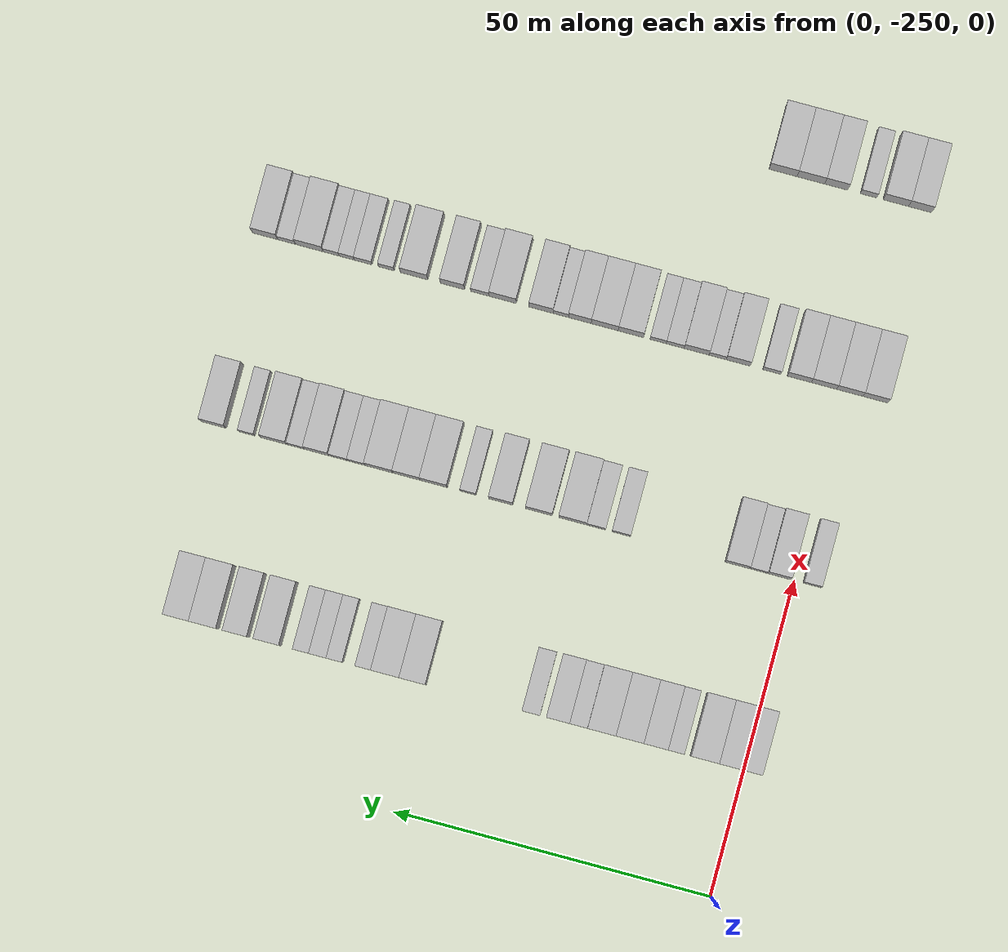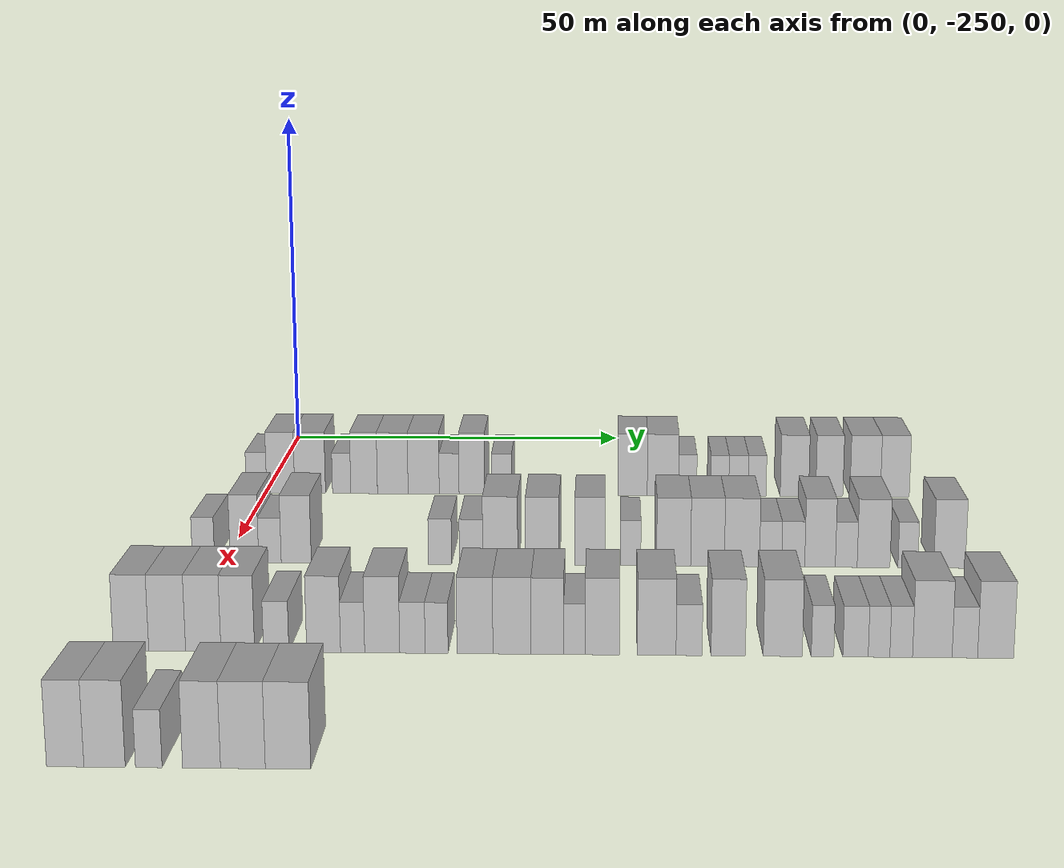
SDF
<sdf version="1.6">
 <world name="default">
  <model name="building_41">
   <static>1</static>
   <pose>25.0000 -251.3099 0 0.000000 0.000000 0.000000</pose>
   <link name="link">
    <pose>0 0 3.00 0 0 0</pose>
    <collision name="collision"><geometry><box><size>10.0000 2.9061 6.0000</size></box></geometry></collision>
    <visual name="visual">
     <cast_shadows>0</cast_shadows>
     <geometry><box><size>10.0000 2.9061 6.0000</size></box></geometry>
     <material>
      <script>
       <uri>model://HANNAS_wall/materials/scripts</uri>
       <uri>model://HANNAS_wall/materials/textures</uri>
       <name>vrc/HANNAS_wall</name>
      </script>
     </material>
    </visual>
   </link>
  </model>
  <model name="building_42">
   <static>1</static>
   <pose>25.0000 -247.8543 0 0.000000 0.000000 0.000000</pose>
   <link name="link">
    <pose>0 0 4.50 0 0 0</pose>
    <collision name="collision"><geometry><box><size>10.0000 4.0052 9.0000</size></box></geometry></collision>
    <visual name="visual">
     <cast_shadows>0</cast_shadows>
     <geometry><box><size>10.0000 4.0052 9.0000</size></box></geometry>
     <material>
      <script>
       <uri>model://HANNAS_wall/materials/scripts</uri>
       <uri>model://HANNAS_wall/materials/textures</uri>
       <name>vrc/HANNAS_wall</name>
      </script>
     </material>
    </visual>
   </link>
  </model>
  <model name="building_43">
   <static>1</static>
   <pose>25.0000 -243.6501 0 0.000000 0.000000 0.000000</pose>
   <link name="link">
    <pose>0 0 4.50 0 0 0</pose>
    <collision name="collision"><geometry><box><size>10.0000 4.4032 9.0000</size></box></geometry></collision>
    <visual name="visual">
     <cast_shadows>0</cast_shadows>
     <geometry><box><size>10.0000 4.4032 9.0000</size></box></geometry>
     <material>
      <script>
       <uri>model://HANNAS_wall/materials/scripts</uri>
       <uri>model://HANNAS_wall/materials/textures</uri>
       <name>vrc/HANNAS_wall</name>
      </script>
     </material>
    </visual>
   </link>
  </model>
  <model name="building_44">
   <static>1</static>
   <pose>25.0000 -239.1411 0 0.000000 0.000000 0.000000</pose>
   <link name="link">
    <pose>0 0 3.00 0 0 0</pose>
    <collision name="collision"><geometry><box><size>10.0000 2.6146 6.0000</size></box></geometry></collision>
    <visual name="visual">
     <cast_shadows>0</cast_shadows>
     <geometry><box><size>10.0000 2.6146 6.0000</size></box></geometry>
     <material>
      <script>
       <uri>model://HANNAS_wall/materials/scripts</uri>
       <uri>model://HANNAS_wall/materials/textures</uri>
       <name>vrc/HANNAS_wall</name>
      </script>
     </material>
    </visual>
   </link>
  </model>
  <model name="building_45">
   <static>1</static>
   <pose>25.0000 -235.9345 0 0.000000 0.000000 0.000000</pose>
   <link name="link">
    <pose>0 0 4.50 0 0 0</pose>
    <collision name="collision"><geometry><box><size>10.0000 3.7987 9.0000</size></box></geometry></collision>
    <visual name="visual">
     <cast_shadows>0</cast_shadows>
     <geometry><box><size>10.0000 3.7987 9.0000</size></box></geometry>
     <material>
      <script>
       <uri>model://HANNAS_wall/materials/scripts</uri>
       <uri>model://HANNAS_wall/materials/textures</uri>
       <name>vrc/HANNAS_wall</name>
      </script>
     </material>
    </visual>
   </link>
  </model>
  <model name="building_46">
   <static>1</static>
   <pose>25.0000 -231.8485 0 0.000000 0.000000 0.000000</pose>
   <link name="link">
    <pose>0 0 4.50 0 0 0</pose>
    <collision name="collision"><geometry><box><size>10.0000 4.3732 9.0000</size></box></geometry></collision>
    <visual name="visual">
     <cast_shadows>0</cast_shadows>
     <geometry><box><size>10.0000 4.3732 9.0000</size></box></geometry>
     <material>
      <script>
       <uri>model://HANNAS_wall/materials/scripts</uri>
       <uri>model://HANNAS_wall/materials/textures</uri>
       <name>vrc/HANNAS_wall</name>
      </script>
     </material>
    </visual>
   </link>
  </model>
  <model name="building_47">
   <static>1</static>
   <pose>25.0000 -227.4448 0 0.000000 0.000000 0.000000</pose>
   <link name="link">
    <pose>0 0 4.50 0 0 0</pose>
    <collision name="collision"><geometry><box><size>10.0000 4.4342 9.0000</size></box></geometry></collision>
    <visual name="visual">
     <cast_shadows>0</cast_shadows>
     <geometry><box><size>10.0000 4.4342 9.0000</size></box></geometry>
     <material>
      <script>
       <uri>model://HANNAS_wall/materials/scripts</uri>
       <uri>model://HANNAS_wall/materials/textures</uri>
       <name>vrc/HANNAS_wall</name>
      </script>
     </material>
    </visual>
   </link>
  </model>
  <model name="building_48">
   <static>1</static>
   <pose>25.0000 -223.8152 0 0.000000 0.000000 0.000000</pose>
   <link name="link">
    <pose>0 0 3.00 0 0 0</pose>
    <collision name="collision"><geometry><box><size>10.0000 2.8250 6.0000</size></box></geometry></collision>
    <visual name="visual">
     <cast_shadows>0</cast_shadows>
     <geometry><box><size>10.0000 2.8250 6.0000</size></box></geometry>
     <material>
      <script>
       <uri>model://HANNAS_wall/materials/scripts</uri>
       <uri>model://HANNAS_wall/materials/textures</uri>
       <name>vrc/HANNAS_wall</name>
      </script>
     </material>
    </visual>
   </link>
  </model>
  <model name="building_49">
   <static>1</static>
   <pose>25.0000 -220.5800 0 0.000000 0.000000 0.000000</pose>
   <link name="link">
    <pose>0 0 4.50 0 0 0</pose>
    <collision name="collision"><geometry><box><size>10.0000 3.6453 9.0000</size></box></geometry></collision>
    <visual name="visual">
     <cast_shadows>0</cast_shadows>
     <geometry><box><size>10.0000 3.6453 9.0000</size></box></geometry>
     <material>
      <script>
       <uri>model://HANNAS_wall/materials/scripts</uri>
       <uri>model://HANNAS_wall/materials/textures</uri>
       <name>vrc/HANNAS_wall</name>
      </script>
     </material>
    </visual>
   </link>
  </model>
  <model name="building_50">
   <static>1</static>
   <pose>25.0000 -216.3403 0 0.000000 0.000000 0.000000</pose>
   <link name="link">
    <pose>0 0 3.00 0 0 0</pose>
    <collision name="collision"><geometry><box><size>10.0000 2.8340 6.0000</size></box></geometry></collision>
    <visual name="visual">
     <cast_shadows>0</cast_shadows>
     <geometry><box><size>10.0000 2.8340 6.0000</size></box></geometry>
     <material>
      <script>
       <uri>model://HANNAS_wall/materials/scripts</uri>
       <uri>model://HANNAS_wall/materials/textures</uri>
       <name>vrc/HANNAS_wall</name>
      </script>
     </material>
    </visual>
   </link>
  </model>
  <model name="building_51">
   <static>1</static>
   <pose>25.0000 -197.7260 0 0.000000 0.000000 0.000000</pose>
   <link name="link">
    <pose>0 0 4.50 0 0 0</pose>
    <collision name="collision"><geometry><box><size>10.0000 4.1316 9.0000</size></box></geometry></collision>
    <visual name="visual">
     <cast_shadows>0</cast_shadows>
     <geometry><box><size>10.0000 4.1316 9.0000</size></box></geometry>
     <material>
      <script>
       <uri>model://HANNAS_wall/materials/scripts</uri>
       <uri>model://HANNAS_wall/materials/textures</uri>
       <name>vrc/HANNAS_wall</name>
      </script>
     </material>
    </visual>
   </link>
  </model>
  <model name="building_52">
   <static>1</static>
   <pose>25.0000 -193.4386 0 0.000000 0.000000 0.000000</pose>
   <link name="link">
    <pose>0 0 4.50 0 0 0</pose>
    <collision name="collision"><geometry><box><size>10.0000 4.4432 9.0000</size></box></geometry></collision>
    <visual name="visual">
     <cast_shadows>0</cast_shadows>
     <geometry><box><size>10.0000 4.4432 9.0000</size></box></geometry>
     <material>
      <script>
       <uri>model://HANNAS_wall/materials/scripts</uri>
       <uri>model://HANNAS_wall/materials/textures</uri>
       <name>vrc/HANNAS_wall</name>
      </script>
     </material>
    </visual>
   </link>
  </model>
  <model name="building_53">
   <static>1</static>
   <pose>25.0000 -189.9382 0 0.000000 0.000000 0.000000</pose>
   <link name="link">
    <pose>0 0 3.00 0 0 0</pose>
    <collision name="collision"><geometry><box><size>10.0000 2.5575 6.0000</size></box></geometry></collision>
    <visual name="visual">
     <cast_shadows>0</cast_shadows>
     <geometry><box><size>10.0000 2.5575 6.0000</size></box></geometry>
     <material>
      <script>
       <uri>model://HANNAS_wall/materials/scripts</uri>
       <uri>model://HANNAS_wall/materials/textures</uri>
       <name>vrc/HANNAS_wall</name>
      </script>
     </material>
    </visual>
   </link>
  </model>
  <model name="building_54">
   <static>1</static>
   <pose>25.0000 -185.3896 0 0.000000 0.000000 0.000000</pose>
   <link name="link">
    <pose>0 0 3.00 0 0 0</pose>
    <collision name="collision"><geometry><box><size>10.0000 2.5398 6.0000</size></box></geometry></collision>
    <visual name="visual">
     <cast_shadows>0</cast_shadows>
     <geometry><box><size>10.0000 2.5398 6.0000</size></box></geometry>
     <material>
      <script>
       <uri>model://HANNAS_wall/materials/scripts</uri>
       <uri>model://HANNAS_wall/materials/textures</uri>
       <name>vrc/HANNAS_wall</name>
      </script>
     </material>
    </visual>
   </link>
  </model>
  <model name="building_55">
   <static>1</static>
   <pose>25.0000 -182.7442 0 0.000000 0.000000 0.000000</pose>
   <link name="link">
    <pose>0 0 3.00 0 0 0</pose>
    <collision name="collision"><geometry><box><size>10.0000 2.7509 6.0000</size></box></geometry></collision>
    <visual name="visual">
     <cast_shadows>0</cast_shadows>
     <geometry><box><size>10.0000 2.7509 6.0000</size></box></geometry>
     <material>
      <script>
       <uri>model://HANNAS_wall/materials/scripts</uri>
       <uri>model://HANNAS_wall/materials/textures</uri>
       <name>vrc/HANNAS_wall</name>
      </script>
     </material>
    </visual>
   </link>
  </model>
  <model name="building_56">
   <static>1</static>
   <pose>25.0000 -180.1014 0 0.000000 0.000000 0.000000</pose>
   <link name="link">
    <pose>0 0 3.00 0 0 0</pose>
    <collision name="collision"><geometry><box><size>10.0000 2.5346 6.0000</size></box></geometry></collision>
    <visual name="visual">
     <cast_shadows>0</cast_shadows>
     <geometry><box><size>10.0000 2.5346 6.0000</size></box></geometry>
     <material>
      <script>
       <uri>model://HANNAS_wall/materials/scripts</uri>
       <uri>model://HANNAS_wall/materials/textures</uri>
       <name>vrc/HANNAS_wall</name>
      </script>
     </material>
    </visual>
   </link>
  </model>
  <model name="building_57">
   <static>1</static>
   <pose>25.0000 -174.8258 0 0.000000 0.000000 0.000000</pose>
   <link name="link">
    <pose>0 0 4.50 0 0 0</pose>
    <collision name="collision"><geometry><box><size>10.0000 4.0165 9.0000</size></box></geometry></collision>
    <visual name="visual">
     <cast_shadows>0</cast_shadows>
     <geometry><box><size>10.0000 4.0165 9.0000</size></box></geometry>
     <material>
      <script>
       <uri>model://HANNAS_wall/materials/scripts</uri>
       <uri>model://HANNAS_wall/materials/textures</uri>
       <name>vrc/HANNAS_wall</name>
      </script>
     </material>
    </visual>
   </link>
  </model>
  <model name="building_58">
   <static>1</static>
   <pose>25.0000 -169.9000 0 0.000000 0.000000 0.000000</pose>
   <link name="link">
    <pose>0 0 4.50 0 0 0</pose>
    <collision name="collision"><geometry><box><size>10.0000 3.8351 9.0000</size></box></geometry></collision>
    <visual name="visual">
     <cast_shadows>0</cast_shadows>
     <geometry><box><size>10.0000 3.8351 9.0000</size></box></geometry>
     <material>
      <script>
       <uri>model://HANNAS_wall/materials/scripts</uri>
       <uri>model://HANNAS_wall/materials/textures</uri>
       <name>vrc/HANNAS_wall</name>
      </script>
     </material>
    </visual>
   </link>
  </model>
  <model name="building_59">
   <static>1</static>
   <pose>25.0000 -164.8351 0 0.000000 0.000000 0.000000</pose>
   <link name="link">
    <pose>0 0 4.50 0 0 0</pose>
    <collision name="collision"><geometry><box><size>10.0000 4.2946 9.0000</size></box></geometry></collision>
    <visual name="visual">
     <cast_shadows>0</cast_shadows>
     <geometry><box><size>10.0000 4.2946 9.0000</size></box></geometry>
     <material>
      <script>
       <uri>model://HANNAS_wall/materials/scripts</uri>
       <uri>model://HANNAS_wall/materials/textures</uri>
       <name>vrc/HANNAS_wall</name>
      </script>
     </material>
    </visual>
   </link>
  </model>
  <model name="building_60">
   <static>1</static>
   <pose>25.0000 -160.6506 0 0.000000 0.000000 0.000000</pose>
   <link name="link">
    <pose>0 0 4.50 0 0 0</pose>
    <collision name="collision"><geometry><box><size>10.0000 4.0743 9.0000</size></box></geometry></collision>
    <visual name="visual">
     <cast_shadows>0</cast_shadows>
     <geometry><box><size>10.0000 4.0743 9.0000</size></box></geometry>
     <material>
      <script>
       <uri>model://HANNAS_wall/materials/scripts</uri>
       <uri>model://HANNAS_wall/materials/textures</uri>
       <name>vrc/HANNAS_wall</name>
      </script>
     </material>
    </visual>
   </link>
  </model>
  <model name="building_262">
   <static>1</static>
   <pose>55.0000 -252.7216 0 0.000000 0.000000 0.000000</pose>
   <link name="link">
    <pose>0 0 3.00 0 0 0</pose>
    <collision name="collision"><geometry><box><size>10.0000 2.8469 6.0000</size></box></geometry></collision>
    <visual name="visual">
     <cast_shadows>0</cast_shadows>
     <geometry><box><size>10.0000 2.8469 6.0000</size></box></geometry>
     <material>
      <script>
       <uri>model://HANNAS_wall/materials/scripts</uri>
       <uri>model://HANNAS_wall/materials/textures</uri>
       <name>vrc/HANNAS_wall</name>
      </script>
     </material>
    </visual>
   </link>
  </model>
  <model name="building_263">
   <static>1</static>
   <pose>55.0000 -247.4791 0 0.000000 0.000000 0.000000</pose>
   <link name="link">
    <pose>0 0 4.50 0 0 0</pose>
    <collision name="collision"><geometry><box><size>10.0000 3.6380 9.0000</size></box></geometry></collision>
    <visual name="visual">
     <cast_shadows>0</cast_shadows>
     <geometry><box><size>10.0000 3.6380 9.0000</size></box></geometry>
     <material>
      <script>
       <uri>model://HANNAS_wall/materials/scripts</uri>
       <uri>model://HANNAS_wall/materials/textures</uri>
       <name>vrc/HANNAS_wall</name>
      </script>
     </material>
    </visual>
   </link>
  </model>
  <model name="building_264">
   <static>1</static>
   <pose>55.0000 -244.2243 0 0.000000 0.000000 0.000000</pose>
   <link name="link">
    <pose>0 0 3.00 0 0 0</pose>
    <collision name="collision"><geometry><box><size>10.0000 2.8717 6.0000</size></box></geometry></collision>
    <visual name="visual">
     <cast_shadows>0</cast_shadows>
     <geometry><box><size>10.0000 2.8717 6.0000</size></box></geometry>
     <material>
      <script>
       <uri>model://HANNAS_wall/materials/scripts</uri>
       <uri>model://HANNAS_wall/materials/textures</uri>
       <name>vrc/HANNAS_wall</name>
      </script>
     </material>
    </visual>
   </link>
  </model>
  <model name="building_265">
   <static>1</static>
   <pose>55.0000 -240.8677 0 0.000000 0.000000 0.000000</pose>
   <link name="link">
    <pose>0 0 4.50 0 0 0</pose>
    <collision name="collision"><geometry><box><size>10.0000 3.8416 9.0000</size></box></geometry></collision>
    <visual name="visual">
     <cast_shadows>0</cast_shadows>
     <geometry><box><size>10.0000 3.8416 9.0000</size></box></geometry>
     <material>
      <script>
       <uri>model://HANNAS_wall/materials/scripts</uri>
       <uri>model://HANNAS_wall/materials/textures</uri>
       <name>vrc/HANNAS_wall</name>
      </script>
     </material>
    </visual>
   </link>
  </model>
  <model name="building_266">
   <static>1</static>
   <pose>55.0000 -222.5348 0 0.000000 0.000000 0.000000</pose>
   <link name="link">
    <pose>0 0 3.00 0 0 0</pose>
    <collision name="collision"><geometry><box><size>10.0000 2.9414 6.0000</size></box></geometry></collision>
    <visual name="visual">
     <cast_shadows>0</cast_shadows>
     <geometry><box><size>10.0000 2.9414 6.0000</size></box></geometry>
     <material>
      <script>
       <uri>model://HANNAS_wall/materials/scripts</uri>
       <uri>model://HANNAS_wall/materials/textures</uri>
       <name>vrc/HANNAS_wall</name>
      </script>
     </material>
    </visual>
   </link>
  </model>
  <model name="building_267">
   <static>1</static>
   <pose>55.0000 -218.5814 0 0.000000 0.000000 0.000000</pose>
   <link name="link">
    <pose>0 0 3.00 0 0 0</pose>
    <collision name="collision"><geometry><box><size>10.0000 2.9654 6.0000</size></box></geometry></collision>
    <visual name="visual">
     <cast_shadows>0</cast_shadows>
     <geometry><box><size>10.0000 2.9654 6.0000</size></box></geometry>
     <material>
      <script>
       <uri>model://HANNAS_wall/materials/scripts</uri>
       <uri>model://HANNAS_wall/materials/textures</uri>
       <name>vrc/HANNAS_wall</name>
      </script>
     </material>
    </visual>
   </link>
  </model>
  <model name="building_268">
   <static>1</static>
   <pose>55.0000 -214.8758 0 0.000000 0.000000 0.000000</pose>
   <link name="link">
    <pose>0 0 4.50 0 0 0</pose>
    <collision name="collision"><geometry><box><size>10.0000 4.4458 9.0000</size></box></geometry></collision>
    <visual name="visual">
     <cast_shadows>0</cast_shadows>
     <geometry><box><size>10.0000 4.4458 9.0000</size></box></geometry>
     <material>
      <script>
       <uri>model://HANNAS_wall/materials/scripts</uri>
       <uri>model://HANNAS_wall/materials/textures</uri>
       <name>vrc/HANNAS_wall</name>
      </script>
     </material>
    </visual>
   </link>
  </model>
  <model name="building_269">
   <static>1</static>
   <pose>55.0000 -209.5305 0 0.000000 0.000000 0.000000</pose>
   <link name="link">
    <pose>0 0 4.50 0 0 0</pose>
    <collision name="collision"><geometry><box><size>10.0000 4.2449 9.0000</size></box></geometry></collision>
    <visual name="visual">
     <cast_shadows>0</cast_shadows>
     <geometry><box><size>10.0000 4.2449 9.0000</size></box></geometry>
     <material>
      <script>
       <uri>model://HANNAS_wall/materials/scripts</uri>
       <uri>model://HANNAS_wall/materials/textures</uri>
       <name>vrc/HANNAS_wall</name>
      </script>
     </material>
    </visual>
   </link>
  </model>
  <model name="building_270">
   <static>1</static>
   <pose>55.0000 -203.5032 0 0.000000 0.000000 0.000000</pose>
   <link name="link">
    <pose>0 0 4.50 0 0 0</pose>
    <collision name="collision"><geometry><box><size>10.0000 3.8096 9.0000</size></box></geometry></collision>
    <visual name="visual">
     <cast_shadows>0</cast_shadows>
     <geometry><box><size>10.0000 3.8096 9.0000</size></box></geometry>
     <material>
      <script>
       <uri>model://HANNAS_wall/materials/scripts</uri>
       <uri>model://HANNAS_wall/materials/textures</uri>
       <name>vrc/HANNAS_wall</name>
      </script>
     </material>
    </visual>
   </link>
  </model>
  <model name="building_271">
   <static>1</static>
   <pose>55.0000 -198.3209 0 0.000000 0.000000 0.000000</pose>
   <link name="link">
    <pose>0 0 3.00 0 0 0</pose>
    <collision name="collision"><geometry><box><size>10.0000 2.5552 6.0000</size></box></geometry></collision>
    <visual name="visual">
     <cast_shadows>0</cast_shadows>
     <geometry><box><size>10.0000 2.5552 6.0000</size></box></geometry>
     <material>
      <script>
       <uri>model://HANNAS_wall/materials/scripts</uri>
       <uri>model://HANNAS_wall/materials/textures</uri>
       <name>vrc/HANNAS_wall</name>
      </script>
     </material>
    </visual>
   </link>
  </model>
  <model name="building_272">
   <static>1</static>
   <pose>55.0000 -192.8851 0 0.000000 0.000000 0.000000</pose>
   <link name="link">
    <pose>0 0 4.50 0 0 0</pose>
    <collision name="collision"><geometry><box><size>10.0000 4.3162 9.0000</size></box></geometry></collision>
    <visual name="visual">
     <cast_shadows>0</cast_shadows>
     <geometry><box><size>10.0000 4.3162 9.0000</size></box></geometry>
     <material>
      <script>
       <uri>model://HANNAS_wall/materials/scripts</uri>
       <uri>model://HANNAS_wall/materials/textures</uri>
       <name>vrc/HANNAS_wall</name>
      </script>
     </material>
    </visual>
   </link>
  </model>
  <model name="building_273">
   <static>1</static>
   <pose>55.0000 -188.5932 0 0.000000 0.000000 0.000000</pose>
   <link name="link">
    <pose>0 0 4.50 0 0 0</pose>
    <collision name="collision"><geometry><box><size>10.0000 4.2675 9.0000</size></box></geometry></collision>
    <visual name="visual">
     <cast_shadows>0</cast_shadows>
     <geometry><box><size>10.0000 4.2675 9.0000</size></box></geometry>
     <material>
      <script>
       <uri>model://HANNAS_wall/materials/scripts</uri>
       <uri>model://HANNAS_wall/materials/textures</uri>
       <name>vrc/HANNAS_wall</name>
      </script>
     </material>
    </visual>
   </link>
  </model>
  <model name="building_274">
   <static>1</static>
   <pose>55.0000 -184.2405 0 0.000000 0.000000 0.000000</pose>
   <link name="link">
    <pose>0 0 4.50 0 0 0</pose>
    <collision name="collision"><geometry><box><size>10.0000 4.4379 9.0000</size></box></geometry></collision>
    <visual name="visual">
     <cast_shadows>0</cast_shadows>
     <geometry><box><size>10.0000 4.4379 9.0000</size></box></geometry>
     <material>
      <script>
       <uri>model://HANNAS_wall/materials/scripts</uri>
       <uri>model://HANNAS_wall/materials/textures</uri>
       <name>vrc/HANNAS_wall</name>
      </script>
     </material>
    </visual>
   </link>
  </model>
  <model name="building_275">
   <static>1</static>
   <pose>55.0000 -180.6247 0 0.000000 0.000000 0.000000</pose>
   <link name="link">
    <pose>0 0 3.00 0 0 0</pose>
    <collision name="collision"><geometry><box><size>10.0000 2.7938 6.0000</size></box></geometry></collision>
    <visual name="visual">
     <cast_shadows>0</cast_shadows>
     <geometry><box><size>10.0000 2.7938 6.0000</size></box></geometry>
     <material>
      <script>
       <uri>model://HANNAS_wall/materials/scripts</uri>
       <uri>model://HANNAS_wall/materials/textures</uri>
       <name>vrc/HANNAS_wall</name>
      </script>
     </material>
    </visual>
   </link>
  </model>
  <model name="building_276">
   <static>1</static>
   <pose>55.0000 -177.7705 0 0.000000 0.000000 0.000000</pose>
   <link name="link">
    <pose>0 0 3.00 0 0 0</pose>
    <collision name="collision"><geometry><box><size>10.0000 2.9147 6.0000</size></box></geometry></collision>
    <visual name="visual">
     <cast_shadows>0</cast_shadows>
     <geometry><box><size>10.0000 2.9147 6.0000</size></box></geometry>
     <material>
      <script>
       <uri>model://HANNAS_wall/materials/scripts</uri>
       <uri>model://HANNAS_wall/materials/textures</uri>
       <name>vrc/HANNAS_wall</name>
      </script>
     </material>
    </visual>
   </link>
  </model>
  <model name="building_277">
   <static>1</static>
   <pose>55.0000 -174.3769 0 0.000000 0.000000 0.000000</pose>
   <link name="link">
    <pose>0 0 4.50 0 0 0</pose>
    <collision name="collision"><geometry><box><size>10.0000 3.8724 9.0000</size></box></geometry></collision>
    <visual name="visual">
     <cast_shadows>0</cast_shadows>
     <geometry><box><size>10.0000 3.8724 9.0000</size></box></geometry>
     <material>
      <script>
       <uri>model://HANNAS_wall/materials/scripts</uri>
       <uri>model://HANNAS_wall/materials/textures</uri>
       <name>vrc/HANNAS_wall</name>
      </script>
     </material>
    </visual>
   </link>
  </model>
  <model name="building_278">
   <static>1</static>
   <pose>55.0000 -171.0667 0 0.000000 0.000000 0.000000</pose>
   <link name="link">
    <pose>0 0 3.00 0 0 0</pose>
    <collision name="collision"><geometry><box><size>10.0000 2.7481 6.0000</size></box></geometry></collision>
    <visual name="visual">
     <cast_shadows>0</cast_shadows>
     <geometry><box><size>10.0000 2.7481 6.0000</size></box></geometry>
     <material>
      <script>
       <uri>model://HANNAS_wall/materials/scripts</uri>
       <uri>model://HANNAS_wall/materials/textures</uri>
       <name>vrc/HANNAS_wall</name>
      </script>
     </material>
    </visual>
   </link>
  </model>
  <model name="building_279">
   <static>1</static>
   <pose>55.0000 -167.6219 0 0.000000 0.000000 0.000000</pose>
   <link name="link">
    <pose>0 0 4.50 0 0 0</pose>
    <collision name="collision"><geometry><box><size>10.0000 4.1414 9.0000</size></box></geometry></collision>
    <visual name="visual">
     <cast_shadows>0</cast_shadows>
     <geometry><box><size>10.0000 4.1414 9.0000</size></box></geometry>
     <material>
      <script>
       <uri>model://HANNAS_wall/materials/scripts</uri>
       <uri>model://HANNAS_wall/materials/textures</uri>
       <name>vrc/HANNAS_wall</name>
      </script>
     </material>
    </visual>
   </link>
  </model>
  <model name="building_280">
   <static>1</static>
   <pose>55.0000 -163.3008 0 0.000000 0.000000 0.000000</pose>
   <link name="link">
    <pose>0 0 3.00 0 0 0</pose>
    <collision name="collision"><geometry><box><size>10.0000 2.5007 6.0000</size></box></geometry></collision>
    <visual name="visual">
     <cast_shadows>0</cast_shadows>
     <geometry><box><size>10.0000 2.5007 6.0000</size></box></geometry>
     <material>
      <script>
       <uri>model://HANNAS_wall/materials/scripts</uri>
       <uri>model://HANNAS_wall/materials/textures</uri>
       <name>vrc/HANNAS_wall</name>
      </script>
     </material>
    </visual>
   </link>
  </model>
  <model name="building_281">
   <static>1</static>
   <pose>55.0000 -158.0625 0 0.000000 0.000000 0.000000</pose>
   <link name="link">
    <pose>0 0 4.50 0 0 0</pose>
    <collision name="collision"><geometry><box><size>10.0000 3.9760 9.0000</size></box></geometry></collision>
    <visual name="visual">
     <cast_shadows>0</cast_shadows>
     <geometry><box><size>10.0000 3.9760 9.0000</size></box></geometry>
     <material>
      <script>
       <uri>model://HANNAS_wall/materials/scripts</uri>
       <uri>model://HANNAS_wall/materials/textures</uri>
       <name>vrc/HANNAS_wall</name>
      </script>
     </material>
    </visual>
   </link>
  </model>
  <model name="building_495">
   <static>1</static>
   <pose>85.0000 -254.7269 0 0.000000 0.000000 0.000000</pose>
   <link name="link">
    <pose>0 0 4.50 0 0 0</pose>
    <collision name="collision"><geometry><box><size>10.0000 4.0008 9.0000</size></box></geometry></collision>
    <visual name="visual">
     <cast_shadows>0</cast_shadows>
     <geometry><box><size>10.0000 4.0008 9.0000</size></box></geometry>
     <material>
      <script>
       <uri>model://HANNAS_wall/materials/scripts</uri>
       <uri>model://HANNAS_wall/materials/textures</uri>
       <name>vrc/HANNAS_wall</name>
      </script>
     </material>
    </visual>
   </link>
  </model>
  <model name="building_496">
   <static>1</static>
   <pose>85.0000 -250.6471 0 0.000000 0.000000 0.000000</pose>
   <link name="link">
    <pose>0 0 4.50 0 0 0</pose>
    <collision name="collision"><geometry><box><size>10.0000 4.1588 9.0000</size></box></geometry></collision>
    <visual name="visual">
     <cast_shadows>0</cast_shadows>
     <geometry><box><size>10.0000 4.1588 9.0000</size></box></geometry>
     <material>
      <script>
       <uri>model://HANNAS_wall/materials/scripts</uri>
       <uri>model://HANNAS_wall/materials/textures</uri>
       <name>vrc/HANNAS_wall</name>
      </script>
     </material>
    </visual>
   </link>
  </model>
  <model name="building_497">
   <static>1</static>
   <pose>85.0000 -246.5773 0 0.000000 0.000000 0.000000</pose>
   <link name="link">
    <pose>0 0 4.50 0 0 0</pose>
    <collision name="collision"><geometry><box><size>10.0000 3.9807 9.0000</size></box></geometry></collision>
    <visual name="visual">
     <cast_shadows>0</cast_shadows>
     <geometry><box><size>10.0000 3.9807 9.0000</size></box></geometry>
     <material>
      <script>
       <uri>model://HANNAS_wall/materials/scripts</uri>
       <uri>model://HANNAS_wall/materials/textures</uri>
       <name>vrc/HANNAS_wall</name>
      </script>
     </material>
    </visual>
   </link>
  </model>
  <model name="building_498">
   <static>1</static>
   <pose>85.0000 -242.6879 0 0.000000 0.000000 0.000000</pose>
   <link name="link">
    <pose>0 0 4.50 0 0 0</pose>
    <collision name="collision"><geometry><box><size>10.0000 3.7982 9.0000</size></box></geometry></collision>
    <visual name="visual">
     <cast_shadows>0</cast_shadows>
     <geometry><box><size>10.0000 3.7982 9.0000</size></box></geometry>
     <material>
      <script>
       <uri>model://HANNAS_wall/materials/scripts</uri>
       <uri>model://HANNAS_wall/materials/textures</uri>
       <name>vrc/HANNAS_wall</name>
      </script>
     </material>
    </visual>
   </link>
  </model>
  <model name="building_499">
   <static>1</static>
   <pose>85.0000 -238.3603 0 0.000000 0.000000 0.000000</pose>
   <link name="link">
    <pose>0 0 3.00 0 0 0</pose>
    <collision name="collision"><geometry><box><size>10.0000 2.8569 6.0000</size></box></geometry></collision>
    <visual name="visual">
     <cast_shadows>0</cast_shadows>
     <geometry><box><size>10.0000 2.8569 6.0000</size></box></geometry>
     <material>
      <script>
       <uri>model://HANNAS_wall/materials/scripts</uri>
       <uri>model://HANNAS_wall/materials/textures</uri>
       <name>vrc/HANNAS_wall</name>
      </script>
     </material>
    </visual>
   </link>
  </model>
  <model name="building_500">
   <static>1</static>
   <pose>85.0000 -233.0256 0 0.000000 0.000000 0.000000</pose>
   <link name="link">
    <pose>0 0 4.50 0 0 0</pose>
    <collision name="collision"><geometry><box><size>10.0000 3.8125 9.0000</size></box></geometry></collision>
    <visual name="visual">
     <cast_shadows>0</cast_shadows>
     <geometry><box><size>10.0000 3.8125 9.0000</size></box></geometry>
     <material>
      <script>
       <uri>model://HANNAS_wall/materials/scripts</uri>
       <uri>model://HANNAS_wall/materials/textures</uri>
       <name>vrc/HANNAS_wall</name>
      </script>
     </material>
    </visual>
   </link>
  </model>
  <model name="building_501">
   <static>1</static>
   <pose>85.0000 -229.7668 0 0.000000 0.000000 0.000000</pose>
   <link name="link">
    <pose>0 0 3.00 0 0 0</pose>
    <collision name="collision"><geometry><box><size>10.0000 2.7052 6.0000</size></box></geometry></collision>
    <visual name="visual">
     <cast_shadows>0</cast_shadows>
     <geometry><box><size>10.0000 2.7052 6.0000</size></box></geometry>
     <material>
      <script>
       <uri>model://HANNAS_wall/materials/scripts</uri>
       <uri>model://HANNAS_wall/materials/textures</uri>
       <name>vrc/HANNAS_wall</name>
      </script>
     </material>
    </visual>
   </link>
  </model>
  <model name="building_502">
   <static>1</static>
   <pose>85.0000 -226.4442 0 0.000000 0.000000 0.000000</pose>
   <link name="link">
    <pose>0 0 4.50 0 0 0</pose>
    <collision name="collision"><geometry><box><size>10.0000 3.9400 9.0000</size></box></geometry></collision>
    <visual name="visual">
     <cast_shadows>0</cast_shadows>
     <geometry><box><size>10.0000 3.9400 9.0000</size></box></geometry>
     <material>
      <script>
       <uri>model://HANNAS_wall/materials/scripts</uri>
       <uri>model://HANNAS_wall/materials/textures</uri>
       <name>vrc/HANNAS_wall</name>
      </script>
     </material>
    </visual>
   </link>
  </model>
  <model name="building_503">
   <static>1</static>
   <pose>85.0000 -223.0495 0 0.000000 0.000000 0.000000</pose>
   <link name="link">
    <pose>0 0 3.00 0 0 0</pose>
    <collision name="collision"><geometry><box><size>10.0000 2.8493 6.0000</size></box></geometry></collision>
    <visual name="visual">
     <cast_shadows>0</cast_shadows>
     <geometry><box><size>10.0000 2.8493 6.0000</size></box></geometry>
     <material>
      <script>
       <uri>model://HANNAS_wall/materials/scripts</uri>
       <uri>model://HANNAS_wall/materials/textures</uri>
       <name>vrc/HANNAS_wall</name>
      </script>
     </material>
    </visual>
   </link>
  </model>
  <model name="building_504">
   <static>1</static>
   <pose>85.0000 -220.3419 0 0.000000 0.000000 0.000000</pose>
   <link name="link">
    <pose>0 0 3.00 0 0 0</pose>
    <collision name="collision"><geometry><box><size>10.0000 2.5659 6.0000</size></box></geometry></collision>
    <visual name="visual">
     <cast_shadows>0</cast_shadows>
     <geometry><box><size>10.0000 2.5659 6.0000</size></box></geometry>
     <material>
      <script>
       <uri>model://HANNAS_wall/materials/scripts</uri>
       <uri>model://HANNAS_wall/materials/textures</uri>
       <name>vrc/HANNAS_wall</name>
      </script>
     </material>
    </visual>
   </link>
  </model>
  <model name="building_505">
   <static>1</static>
   <pose>85.0000 -216.0453 0 0.000000 0.000000 0.000000</pose>
   <link name="link">
    <pose>0 0 4.50 0 0 0</pose>
    <collision name="collision"><geometry><box><size>10.0000 4.0273 9.0000</size></box></geometry></collision>
    <visual name="visual">
     <cast_shadows>0</cast_shadows>
     <geometry><box><size>10.0000 4.0273 9.0000</size></box></geometry>
     <material>
      <script>
       <uri>model://HANNAS_wall/materials/scripts</uri>
       <uri>model://HANNAS_wall/materials/textures</uri>
       <name>vrc/HANNAS_wall</name>
      </script>
     </material>
    </visual>
   </link>
  </model>
  <model name="building_506">
   <static>1</static>
   <pose>85.0000 -211.8914 0 0.000000 0.000000 0.000000</pose>
   <link name="link">
    <pose>0 0 4.50 0 0 0</pose>
    <collision name="collision"><geometry><box><size>10.0000 4.2804 9.0000</size></box></geometry></collision>
    <visual name="visual">
     <cast_shadows>0</cast_shadows>
     <geometry><box><size>10.0000 4.2804 9.0000</size></box></geometry>
     <material>
      <script>
       <uri>model://HANNAS_wall/materials/scripts</uri>
       <uri>model://HANNAS_wall/materials/textures</uri>
       <name>vrc/HANNAS_wall</name>
      </script>
     </material>
    </visual>
   </link>
  </model>
  <model name="building_507">
   <static>1</static>
   <pose>85.0000 -207.9424 0 0.000000 0.000000 0.000000</pose>
   <link name="link">
    <pose>0 0 4.50 0 0 0</pose>
    <collision name="collision"><geometry><box><size>10.0000 3.6177 9.0000</size></box></geometry></collision>
    <visual name="visual">
     <cast_shadows>0</cast_shadows>
     <geometry><box><size>10.0000 3.6177 9.0000</size></box></geometry>
     <material>
      <script>
       <uri>model://HANNAS_wall/materials/scripts</uri>
       <uri>model://HANNAS_wall/materials/textures</uri>
       <name>vrc/HANNAS_wall</name>
      </script>
     </material>
    </visual>
   </link>
  </model>
  <model name="building_508">
   <static>1</static>
   <pose>85.0000 -204.9290 0 0.000000 0.000000 0.000000</pose>
   <link name="link">
    <pose>0 0 3.00 0 0 0</pose>
    <collision name="collision"><geometry><box><size>10.0000 2.4089 6.0000</size></box></geometry></collision>
    <visual name="visual">
     <cast_shadows>0</cast_shadows>
     <geometry><box><size>10.0000 2.4089 6.0000</size></box></geometry>
     <material>
      <script>
       <uri>model://HANNAS_wall/materials/scripts</uri>
       <uri>model://HANNAS_wall/materials/textures</uri>
       <name>vrc/HANNAS_wall</name>
      </script>
     </material>
    </visual>
   </link>
  </model>
  <model name="building_509">
   <static>1</static>
   <pose>85.0000 -201.8042 0 0.000000 0.000000 0.000000</pose>
   <link name="link">
    <pose>0 0 4.50 0 0 0</pose>
    <collision name="collision"><geometry><box><size>10.0000 3.8407 9.0000</size></box></geometry></collision>
    <visual name="visual">
     <cast_shadows>0</cast_shadows>
     <geometry><box><size>10.0000 3.8407 9.0000</size></box></geometry>
     <material>
      <script>
       <uri>model://HANNAS_wall/materials/scripts</uri>
       <uri>model://HANNAS_wall/materials/textures</uri>
       <name>vrc/HANNAS_wall</name>
      </script>
     </material>
    </visual>
   </link>
  </model>
  <model name="building_510">
   <static>1</static>
   <pose>85.0000 -195.7280 0 0.000000 0.000000 0.000000</pose>
   <link name="link">
    <pose>0 0 4.50 0 0 0</pose>
    <collision name="collision"><geometry><box><size>10.0000 4.3118 9.0000</size></box></geometry></collision>
    <visual name="visual">
     <cast_shadows>0</cast_shadows>
     <geometry><box><size>10.0000 4.3118 9.0000</size></box></geometry>
     <material>
      <script>
       <uri>model://HANNAS_wall/materials/scripts</uri>
       <uri>model://HANNAS_wall/materials/textures</uri>
       <name>vrc/HANNAS_wall</name>
      </script>
     </material>
    </visual>
   </link>
  </model>
  <model name="building_511">
   <static>1</static>
   <pose>85.0000 -192.1177 0 0.000000 0.000000 0.000000</pose>
   <link name="link">
    <pose>0 0 3.00 0 0 0</pose>
    <collision name="collision"><geometry><box><size>10.0000 2.9087 6.0000</size></box></geometry></collision>
    <visual name="visual">
     <cast_shadows>0</cast_shadows>
     <geometry><box><size>10.0000 2.9087 6.0000</size></box></geometry>
     <material>
      <script>
       <uri>model://HANNAS_wall/materials/scripts</uri>
       <uri>model://HANNAS_wall/materials/textures</uri>
       <name>vrc/HANNAS_wall</name>
      </script>
     </material>
    </visual>
   </link>
  </model>
  <model name="building_512">
   <static>1</static>
   <pose>85.0000 -187.7554 0 0.000000 0.000000 0.000000</pose>
   <link name="link">
    <pose>0 0 4.50 0 0 0</pose>
    <collision name="collision"><geometry><box><size>10.0000 3.8158 9.0000</size></box></geometry></collision>
    <visual name="visual">
     <cast_shadows>0</cast_shadows>
     <geometry><box><size>10.0000 3.8158 9.0000</size></box></geometry>
     <material>
      <script>
       <uri>model://HANNAS_wall/materials/scripts</uri>
       <uri>model://HANNAS_wall/materials/textures</uri>
       <name>vrc/HANNAS_wall</name>
      </script>
     </material>
    </visual>
   </link>
  </model>
  <model name="building_513">
   <static>1</static>
   <pose>85.0000 -181.6792 0 0.000000 0.000000 0.000000</pose>
   <link name="link">
    <pose>0 0 4.50 0 0 0</pose>
    <collision name="collision"><geometry><box><size>10.0000 4.3366 9.0000</size></box></geometry></collision>
    <visual name="visual">
     <cast_shadows>0</cast_shadows>
     <geometry><box><size>10.0000 4.3366 9.0000</size></box></geometry>
     <material>
      <script>
       <uri>model://HANNAS_wall/materials/scripts</uri>
       <uri>model://HANNAS_wall/materials/textures</uri>
       <name>vrc/HANNAS_wall</name>
      </script>
     </material>
    </visual>
   </link>
  </model>
  <model name="building_514">
   <static>1</static>
   <pose>85.0000 -177.2588 0 0.000000 0.000000 0.000000</pose>
   <link name="link">
    <pose>0 0 3.00 0 0 0</pose>
    <collision name="collision"><geometry><box><size>10.0000 2.5043 6.0000</size></box></geometry></collision>
    <visual name="visual">
     <cast_shadows>0</cast_shadows>
     <geometry><box><size>10.0000 2.5043 6.0000</size></box></geometry>
     <material>
      <script>
       <uri>model://HANNAS_wall/materials/scripts</uri>
       <uri>model://HANNAS_wall/materials/textures</uri>
       <name>vrc/HANNAS_wall</name>
      </script>
     </material>
    </visual>
   </link>
  </model>
  <model name="building_515">
   <static>1</static>
   <pose>85.0000 -173.5991 0 0.000000 0.000000 0.000000</pose>
   <link name="link">
    <pose>0 0 3.00 0 0 0</pose>
    <collision name="collision"><geometry><box><size>10.0000 2.8150 6.0000</size></box></geometry></collision>
    <visual name="visual">
     <cast_shadows>0</cast_shadows>
     <geometry><box><size>10.0000 2.8150 6.0000</size></box></geometry>
     <material>
      <script>
       <uri>model://HANNAS_wall/materials/scripts</uri>
       <uri>model://HANNAS_wall/materials/textures</uri>
       <name>vrc/HANNAS_wall</name>
      </script>
     </material>
    </visual>
   </link>
  </model>
  <model name="building_516">
   <static>1</static>
   <pose>85.0000 -170.9908 0 0.000000 0.000000 0.000000</pose>
   <link name="link">
    <pose>0 0 3.00 0 0 0</pose>
    <collision name="collision"><geometry><box><size>10.0000 2.4016 6.0000</size></box></geometry></collision>
    <visual name="visual">
     <cast_shadows>0</cast_shadows>
     <geometry><box><size>10.0000 2.4016 6.0000</size></box></geometry>
     <material>
      <script>
       <uri>model://HANNAS_wall/materials/scripts</uri>
       <uri>model://HANNAS_wall/materials/textures</uri>
       <name>vrc/HANNAS_wall</name>
      </script>
     </material>
    </visual>
   </link>
  </model>
  <model name="building_517">
   <static>1</static>
   <pose>85.0000 -168.5285 0 0.000000 0.000000 0.000000</pose>
   <link name="link">
    <pose>0 0 3.00 0 0 0</pose>
    <collision name="collision"><geometry><box><size>10.0000 2.5229 6.0000</size></box></geometry></collision>
    <visual name="visual">
     <cast_shadows>0</cast_shadows>
     <geometry><box><size>10.0000 2.5229 6.0000</size></box></geometry>
     <material>
      <script>
       <uri>model://HANNAS_wall/materials/scripts</uri>
       <uri>model://HANNAS_wall/materials/textures</uri>
       <name>vrc/HANNAS_wall</name>
      </script>
     </material>
    </visual>
   </link>
  </model>
  <model name="building_518">
   <static>1</static>
   <pose>85.0000 -165.0788 0 0.000000 0.000000 0.000000</pose>
   <link name="link">
    <pose>0 0 4.50 0 0 0</pose>
    <collision name="collision"><geometry><box><size>10.0000 4.3767 9.0000</size></box></geometry></collision>
    <visual name="visual">
     <cast_shadows>0</cast_shadows>
     <geometry><box><size>10.0000 4.3767 9.0000</size></box></geometry>
     <material>
      <script>
       <uri>model://HANNAS_wall/materials/scripts</uri>
       <uri>model://HANNAS_wall/materials/textures</uri>
       <name>vrc/HANNAS_wall</name>
      </script>
     </material>
    </visual>
   </link>
  </model>
  <model name="building_519">
   <static>1</static>
   <pose>85.0000 -161.4766 0 0.000000 0.000000 0.000000</pose>
   <link name="link">
    <pose>0 0 3.00 0 0 0</pose>
    <collision name="collision"><geometry><box><size>10.0000 2.8278 6.0000</size></box></geometry></collision>
    <visual name="visual">
     <cast_shadows>0</cast_shadows>
     <geometry><box><size>10.0000 2.8278 6.0000</size></box></geometry>
     <material>
      <script>
       <uri>model://HANNAS_wall/materials/scripts</uri>
       <uri>model://HANNAS_wall/materials/textures</uri>
       <name>vrc/HANNAS_wall</name>
      </script>
     </material>
    </visual>
   </link>
  </model>
  <model name="building_520">
   <static>1</static>
   <pose>85.0000 -158.0649 0 0.000000 0.000000 0.000000</pose>
   <link name="link">
    <pose>0 0 4.50 0 0 0</pose>
    <collision name="collision"><geometry><box><size>10.0000 3.9955 9.0000</size></box></geometry></collision>
    <visual name="visual">
     <cast_shadows>0</cast_shadows>
     <geometry><box><size>10.0000 3.9955 9.0000</size></box></geometry>
     <material>
      <script>
       <uri>model://HANNAS_wall/materials/scripts</uri>
       <uri>model://HANNAS_wall/materials/textures</uri>
       <name>vrc/HANNAS_wall</name>
      </script>
     </material>
    </visual>
   </link>
  </model>
  <model name="building_725">
   <static>1</static>
   <pose>115.0000 -253.8675 0 0.000000 0.000000 0.000000</pose>
   <link name="link">
    <pose>0 0 4.50 0 0 0</pose>
    <collision name="collision"><geometry><box><size>10.0000 3.6569 9.0000</size></box></geometry></collision>
    <visual name="visual">
     <cast_shadows>0</cast_shadows>
     <geometry><box><size>10.0000 3.6569 9.0000</size></box></geometry>
     <material>
      <script>
       <uri>model://HANNAS_wall/materials/scripts</uri>
       <uri>model://HANNAS_wall/materials/textures</uri>
       <name>vrc/HANNAS_wall</name>
      </script>
     </material>
    </visual>
   </link>
  </model>
  <model name="building_726">
   <static>1</static>
   <pose>115.0000 -250.0213 0 0.000000 0.000000 0.000000</pose>
   <link name="link">
    <pose>0 0 4.50 0 0 0</pose>
    <collision name="collision"><geometry><box><size>10.0000 4.0356 9.0000</size></box></geometry></collision>
    <visual name="visual">
     <cast_shadows>0</cast_shadows>
     <geometry><box><size>10.0000 4.0356 9.0000</size></box></geometry>
     <material>
      <script>
       <uri>model://HANNAS_wall/materials/scripts</uri>
       <uri>model://HANNAS_wall/materials/textures</uri>
       <name>vrc/HANNAS_wall</name>
      </script>
     </material>
    </visual>
   </link>
  </model>
  <model name="building_727">
   <static>1</static>
   <pose>115.0000 -245.7046 0 0.000000 0.000000 0.000000</pose>
   <link name="link">
    <pose>0 0 3.00 0 0 0</pose>
    <collision name="collision"><geometry><box><size>10.0000 2.5979 6.0000</size></box></geometry></collision>
    <visual name="visual">
     <cast_shadows>0</cast_shadows>
     <geometry><box><size>10.0000 2.5979 6.0000</size></box></geometry>
     <material>
      <script>
       <uri>model://HANNAS_wall/materials/scripts</uri>
       <uri>model://HANNAS_wall/materials/textures</uri>
       <name>vrc/HANNAS_wall</name>
      </script>
     </material>
    </visual>
   </link>
  </model>
  <model name="building_728">
   <static>1</static>
   <pose>115.0000 -240.5566 0 0.000000 0.000000 0.000000</pose>
   <link name="link">
    <pose>0 0 4.50 0 0 0</pose>
    <collision name="collision"><geometry><box><size>10.0000 3.6980 9.0000</size></box></geometry></collision>
    <visual name="visual">
     <cast_shadows>0</cast_shadows>
     <geometry><box><size>10.0000 3.6980 9.0000</size></box></geometry>
     <material>
      <script>
       <uri>model://HANNAS_wall/materials/scripts</uri>
       <uri>model://HANNAS_wall/materials/textures</uri>
       <name>vrc/HANNAS_wall</name>
      </script>
     </material>
    </visual>
   </link>
  </model>
  <model name="building_729">
   <static>1</static>
   <pose>115.0000 -236.5276 0 0.000000 0.000000 0.000000</pose>
   <link name="link">
    <pose>0 0 4.50 0 0 0</pose>
    <collision name="collision"><geometry><box><size>10.0000 4.3598 9.0000</size></box></geometry></collision>
    <visual name="visual">
     <cast_shadows>0</cast_shadows>
     <geometry><box><size>10.0000 4.3598 9.0000</size></box></geometry>
     <material>
      <script>
       <uri>model://HANNAS_wall/materials/scripts</uri>
       <uri>model://HANNAS_wall/materials/textures</uri>
       <name>vrc/HANNAS_wall</name>
      </script>
     </material>
    </visual>
   </link>
  </model>
  <model name="building_730">
   <static>1</static>
   <pose>115.0000 -232.1379 0 0.000000 0.000000 0.000000</pose>
   <link name="link">
    <pose>0 0 4.50 0 0 0</pose>
    <collision name="collision"><geometry><box><size>10.0000 4.4196 9.0000</size></box></geometry></collision>
    <visual name="visual">
     <cast_shadows>0</cast_shadows>
     <geometry><box><size>10.0000 4.4196 9.0000</size></box></geometry>
     <material>
      <script>
       <uri>model://HANNAS_wall/materials/scripts</uri>
       <uri>model://HANNAS_wall/materials/textures</uri>
       <name>vrc/HANNAS_wall</name>
      </script>
     </material>
    </visual>
   </link>
  </model>
 </world>
</sdf>
